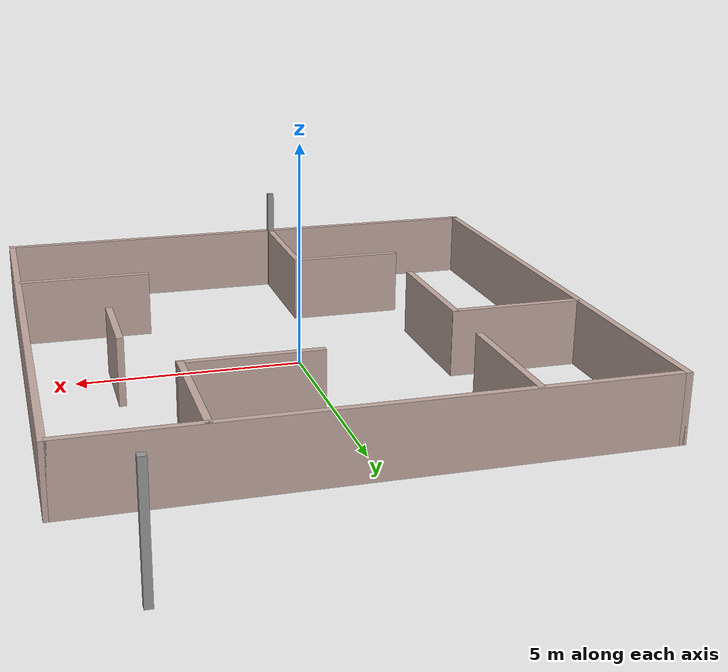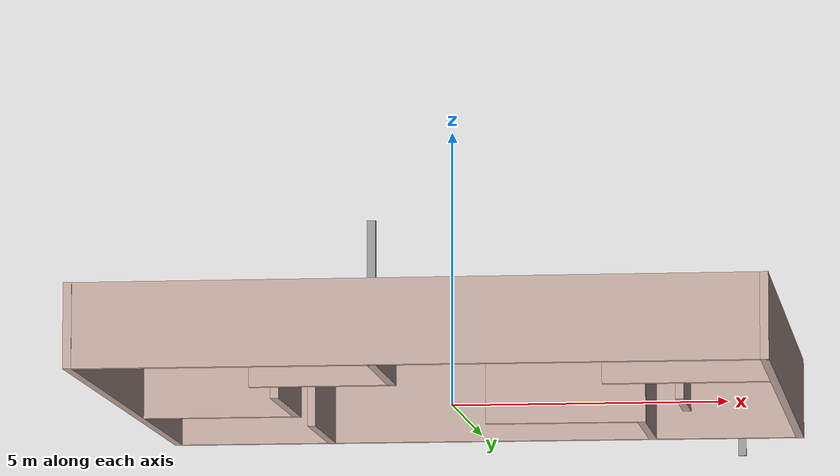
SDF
<?xml version='1.0'?>
<sdf version='1.6'>
  <model name='hideandseekworld'>
    <pose frame=''>0 1.54117 0 0 -0 0</pose>
    <link name='Wall_19'>
      <collision name='Wall_19_Collision'>
        <geometry>
          <box>
            <size>12.15 0.15 1.5</size>
          </box>
        </geometry>
        <pose frame=''>0 0 0.75 0 -0 0</pose>
      </collision>
      <visual name='Wall_19_Visual'>
        <pose frame=''>0 0 0.75 0 -0 0</pose>
        <geometry>
          <box>
            <size>12.15 0.15 1.5</size>
          </box>
        </geometry>
        <material>
          <script>
            <uri>file://media/materials/scripts/gazebo.material</uri>
            <name>Gazebo/Grey</name>
          </script>
          <ambient>0.760784 0.662745 0.627451 1</ambient>
        </material>
        <meta>
          <layer>0</layer>
        </meta>
      </visual>
      <pose frame=''>-6 -1.54117 0 0 -0 1.5708</pose>
    </link>
    <link name='Wall_21'>
      <collision name='Wall_21_Collision'>
        <geometry>
          <box>
            <size>12.15 0.15 1.5</size>
          </box>
        </geometry>
        <pose frame=''>0 0 0.75 0 -0 0</pose>
      </collision>
      <visual name='Wall_21_Visual'>
        <pose frame=''>0 0 0.75 0 -0 0</pose>
        <geometry>
          <box>
            <size>12.15 0.15 1.5</size>
          </box>
        </geometry>
        <material>
          <script>
            <uri>file://media/materials/scripts/gazebo.material</uri>
            <name>Gazebo/Grey</name>
          </script>
          <ambient>0.760784 0.662745 0.627451 1</ambient>
        </material>
        <meta>
          <layer>0</layer>
        </meta>
      </visual>
      <pose frame=''>0 -7.53117 0 0 -0 0</pose>
    </link>
    <link name='Wall_23'>
      <collision name='Wall_23_Collision'>
        <geometry>
          <box>
            <size>12.15 0.15 1.5</size>
          </box>
        </geometry>
        <pose frame=''>0 0 0.75 0 -0 0</pose>
      </collision>
      <visual name='Wall_23_Visual'>
        <pose frame=''>0 0 0.75 0 -0 0</pose>
        <geometry>
          <box>
            <size>12.15 0.15 1.5</size>
          </box>
        </geometry>
        <material>
          <script>
            <uri>file://media/materials/scripts/gazebo.material</uri>
            <name>Gazebo/Grey</name>
          </script>
          <ambient>0.760784 0.662745 0.627451 1</ambient>
        </material>
        <meta>
          <layer>0</layer>
        </meta>
      </visual>
      <pose frame=''>6 -1.54117 0 0 -0 1.5708</pose>
    </link>
    <link name='Wall_25'>
      <collision name='Wall_25_Collision'>
        <geometry>
          <box>
            <size>12 0.15 1.5</size>
          </box>
        </geometry>
        <pose frame=''>0 0 0.75 0 -0 0</pose>
      </collision>
      <visual name='Wall_25_Visual'>
        <pose frame=''>0 0 0.75 0 -0 0</pose>
        <geometry>
          <box>
            <size>12 0.15 1.5</size>
          </box>
        </geometry>
        <material>
          <script>
            <uri>file://media/materials/scripts/gazebo.material</uri>
            <name>Gazebo/Grey</name>
          </script>
          <ambient>0.760784 0.662745 0.627451 1</ambient>
        </material>
        <meta>
          <layer>0</layer>
        </meta>
      </visual>
      <pose frame=''>-0.025 4.45883 0 0 -0 0</pose>
    </link>
    <link name='Wall_29'>
      <collision name='Wall_29_Collision'>
        <geometry>
          <box>
            <size>0.15 0.15 2.5</size>
          </box>
        </geometry>
        <pose frame=''>0 0 1.25 0 -0 0</pose>
      </collision>
      <visual name='Wall_29_Visual'>
        <pose frame=''>0 0 1.25 0 -0 0</pose>
        <geometry>
          <box>
            <size>0.15 0.15 2.5</size>
          </box>
        </geometry>
        <material>
          <script>
            <uri>file://media/materials/scripts/gazebo.material</uri>
            <name>Gazebo/Grey</name>
          </script>
          <ambient>0 0 0 1</ambient>
        </material>
        <meta>
          <layer>0</layer>
        </meta>
      </visual>
      <pose frame=''>4.71667 7.54117 0 0 -0 0</pose>
    </link>
    <link name='Wall_31'>
      <collision name='Wall_31_Collision'>
        <geometry>
          <box>
            <size>3 0.15 1.5</size>
          </box>
        </geometry>
        <pose frame=''>0 0 0.75 0 -0 0</pose>
      </collision>
      <visual name='Wall_31_Visual'>
        <pose frame=''>0 0 0.75 0 -0 0</pose>
        <geometry>
          <box>
            <size>3 0.15 1.5</size>
          </box>
        </geometry>
        <material>
          <script>
            <uri>file://media/materials/scripts/gazebo.material</uri>
            <name>Gazebo/Grey</name>
          </script>
          <ambient>0.760784 0.662745 0.627451 1</ambient>
        </material>
        <meta>
          <layer>0</layer>
        </meta>
      </visual>
      <pose frame=''>-3.01 2.97383 0 0 -0 1.5708</pose>
    </link>
    <link name='Wall_33'>
      <collision name='Wall_33_Collision'>
        <geometry>
          <box>
            <size>3 0.15 1.5</size>
          </box>
        </geometry>
        <pose frame=''>0 0 0.75 0 -0 0</pose>
      </collision>
      <visual name='Wall_33_Visual'>
        <pose frame=''>0 0 0.75 0 -0 0</pose>
        <geometry>
          <box>
            <size>3 0.15 1.5</size>
          </box>
        </geometry>
        <material>
          <script>
            <uri>file://media/materials/scripts/gazebo.material</uri>
            <name>Gazebo/Grey</name>
          </script>
          <ambient>0.760784 0.662745 0.627451 1</ambient>
        </material>
        <meta>
          <layer>0</layer>
        </meta>
      </visual>
      <pose frame=''>1.775 1.52883 0 0 -0 0</pose>
    </link>
    <link name='Wall_35'>
      <collision name='Wall_35_Collision'>
        <geometry>
          <box>
            <size>3 0.15 1.5</size>
          </box>
        </geometry>
        <pose frame=''>0 0 0.75 0 -0 0</pose>
      </collision>
      <visual name='Wall_35_Visual'>
        <pose frame=''>0 0 0.75 0 -0 0</pose>
        <geometry>
          <box>
            <size>3 0.15 1.5</size>
          </box>
        </geometry>
        <material>
          <script>
            <uri>file://media/materials/scripts/gazebo.material</uri>
            <name>Gazebo/Grey</name>
          </script>
          <ambient>0.760784 0.662745 0.627451 1</ambient>
        </material>
        <meta>
          <layer>0</layer>
        </meta>
      </visual>
      <pose frame=''>3.19 3.00383 0 0 -0 1.5708</pose>
    </link>
    <link name='Wall_37'>
      <collision name='Wall_37_Collision'>
        <geometry>
          <box>
            <size>3 0.15 1.5</size>
          </box>
        </geometry>
        <pose frame=''>0 0 0.75 0 -0 0</pose>
      </collision>
      <visual name='Wall_37_Visual'>
        <pose frame=''>0 0 0.75 0 -0 0</pose>
        <geometry>
          <box>
            <size>3 0.15 1.5</size>
          </box>
        </geometry>
        <material>
          <script>
            <uri>file://media/materials/scripts/gazebo.material</uri>
            <name>Gazebo/Grey</name>
          </script>
          <ambient>0.760784 0.662745 0.627451 1</ambient>
        </material>
        <meta>
          <layer>0</layer>
        </meta>
      </visual>
      <pose frame=''>-4.495 -0.021171 0 0 -0 3.14159</pose>
    </link>
    <link name='Wall_40'>
      <collision name='Wall_40_Collision'>
        <geometry>
          <box>
            <size>3 0.15 1.5</size>
          </box>
        </geometry>
        <pose frame=''>0 0 0.75 0 -0 0</pose>
      </collision>
      <visual name='Wall_40_Visual'>
        <pose frame=''>0 0 0.75 0 -0 0</pose>
        <geometry>
          <box>
            <size>3 0.15 1.5</size>
          </box>
        </geometry>
        <material>
          <script>
            <uri>file://media/materials/scripts/gazebo.material</uri>
            <name>Gazebo/Grey</name>
          </script>
          <ambient>0.760784 0.662745 0.627451 1</ambient>
        </material>
        <meta>
          <layer>0</layer>
        </meta>
      </visual>
      <pose frame=''>-3.07 -1.46617 0 0 -0 -1.5708</pose>
    </link>
    <link name='Wall_42'>
      <collision name='Wall_42_Collision'>
        <geometry>
          <box>
            <size>2.62 0.15 1.5</size>
          </box>
        </geometry>
        <pose frame=''>0 0 0.75 0 -0 0</pose>
      </collision>
      <visual name='Wall_42_Visual'>
        <pose frame=''>0 0 0.75 0 -0 0</pose>
        <geometry>
          <box>
            <size>2.62 0.15 1.5</size>
          </box>
        </geometry>
        <material>
          <script>
            <uri>file://media/materials/scripts/gazebo.material</uri>
            <name>Gazebo/Grey</name>
          </script>
          <ambient>0.760784 0.662745 0.627451 1</ambient>
        </material>
        <meta>
          <layer>0</layer>
        </meta>
      </visual>
      <pose frame=''>-1.97 -4.61217 0 0 -0 3.14159</pose>
    </link>
    <link name='Wall_43'>
      <collision name='Wall_43_Collision'>
        <geometry>
          <box>
            <size>3 0.15 1.5</size>
          </box>
        </geometry>
        <pose frame=''>0 0 0.75 0 -0 0</pose>
      </collision>
      <visual name='Wall_43_Visual'>
        <pose frame=''>0 0 0.75 0 -0 0</pose>
        <geometry>
          <box>
            <size>3 0.15 1.5</size>
          </box>
        </geometry>
        <material>
          <script>
            <uri>file://media/materials/scripts/gazebo.material</uri>
            <name>Gazebo/Grey</name>
          </script>
          <ambient>0.760784 0.662745 0.627451 1</ambient>
        </material>
        <meta>
          <layer>0</layer>
        </meta>
      </visual>
      <pose frame=''>-0.735 -6.03717 0 0 -0 -1.5708</pose>
    </link>
    <link name='Wall_44'>
      <collision name='Wall_44_Collision'>
        <geometry>
          <box>
            <size>0.15 0.15 2.5</size>
          </box>
        </geometry>
        <pose frame=''>0 0 1.25 0 -0 0</pose>
      </collision>
      <visual name='Wall_44_Visual'>
        <pose frame=''>0 0 1.25 0 -0 0</pose>
        <geometry>
          <box>
            <size>0.15 0.15 2.5</size>
          </box>
        </geometry>
        <material>
          <script>
            <uri>file://media/materials/scripts/gazebo.material</uri>
            <name>Gazebo/Grey</name>
          </script>
          <ambient>1 1 1 1</ambient>
        </material>
        <meta>
          <layer>0</layer>
        </meta>
      </visual>
      <pose frame=''>-0.735 -7.46217 0 0 -0 0</pose>
    </link>
    <link name='Wall_46'>
      <collision name='Wall_46_Collision'>
        <geometry>
          <box>
            <size>3 0.15 1.5</size>
          </box>
        </geometry>
        <pose frame=''>0 0 0.75 0 -0 0</pose>
      </collision>
      <visual name='Wall_46_Visual'>
        <pose frame=''>0 0 0.75 0 -0 0</pose>
        <geometry>
          <box>
            <size>3 0.15 1.5</size>
          </box>
        </geometry>
        <material>
          <script>
            <uri>file://media/materials/scripts/gazebo.material</uri>
            <name>Gazebo/Grey</name>
          </script>
          <ambient>0.760784 0.662745 0.627451 1</ambient>
        </material>
        <meta>
          <layer>0</layer>
        </meta>
      </visual>
      <pose frame=''>4.465 -4.42117 0 0 -0 0</pose>
    </link>
    <link name='Wall_48'>
      <collision name='Wall_48_Collision'>
        <geometry>
          <box>
            <size>2 0.15 1.5</size>
          </box>
        </geometry>
        <pose frame=''>0 0 0.75 0 -0 0</pose>
      </collision>
      <visual name='Wall_48_Visual'>
        <pose frame=''>0 0 0.75 0 -0 0</pose>
        <geometry>
          <box>
            <size>2 0.15 1.5</size>
          </box>
        </geometry>
        <material>
          <script>
            <uri>file://media/materials/scripts/gazebo.material</uri>
            <name>Gazebo/Grey</name>
          </script>
          <ambient>0.760784 0.662745 0.627451 1</ambient>
        </material>
        <meta>
          <layer>0</layer>
        </meta>
      </visual>
      <pose frame=''>4.16 -1.08617 0 0 -0 -1.5708</pose>
    </link>
    <static>1</static>
  </model>
</sdf>
